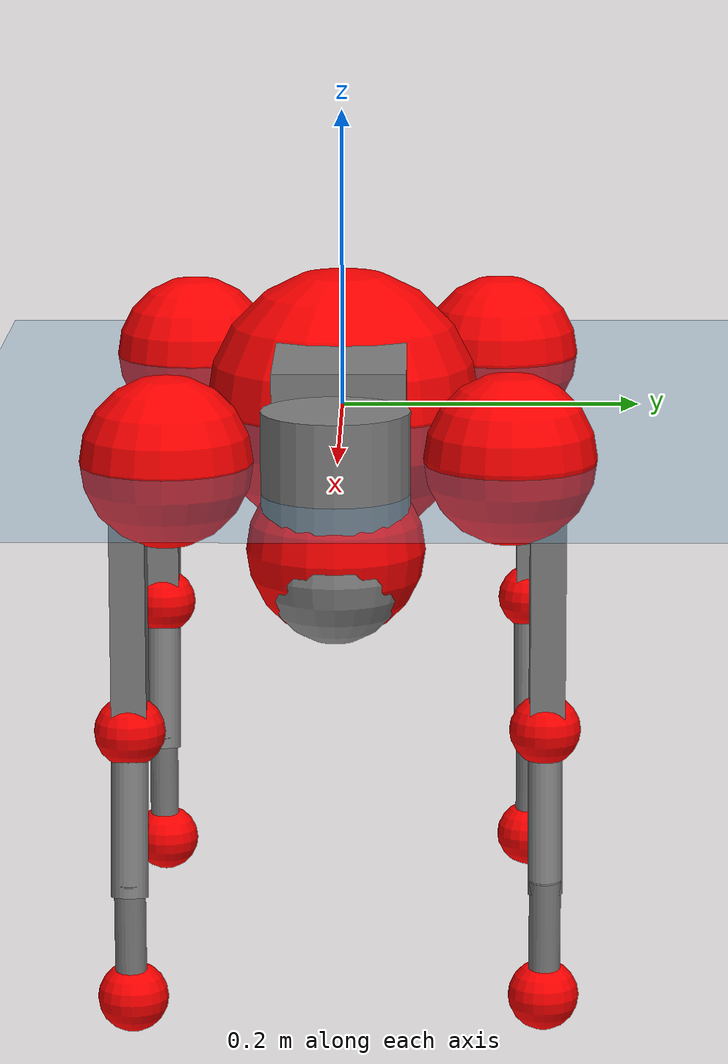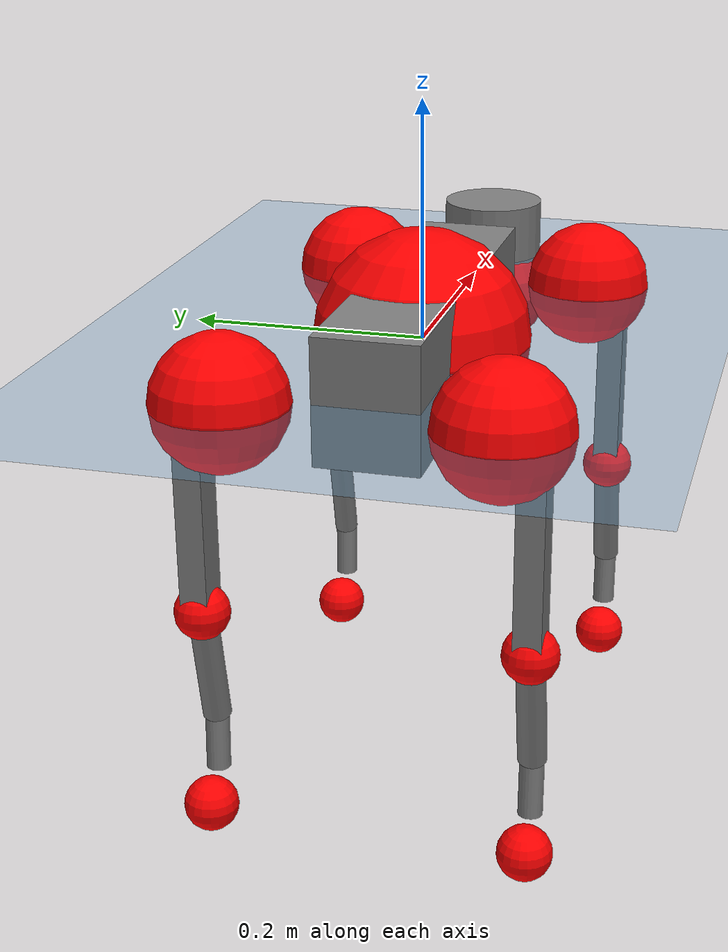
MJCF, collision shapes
<mujoco model="go2">
  <compiler angle="radian" assetdir="assets" balanceinertia="true" inertiafromgeom="false"/>

  <option timestep="0.005" density="1.2" viscosity="2e-05"/>

  <size nkey="1"/>

  <visual>
    <quality shadowsize="8192"/>
    <map shadowclip="0.5"/>
  </visual>

  <default>
    <default class="/">
      <geom contype="0" conaffinity="0" group="1" solref="-1000 -80"/>
      <site size="0.01 0.005 0.005" group="5"/>
      <general forcelimited="true" biastype="affine" gainprm="20" biasprm="0 -20 -0.5"/>
      <default class="go2">
        <joint armature="0.01" damping="0.01" frictionloss="0.2"/>
        <geom condim="1" margin="0.001"/>
        <default class="visual">
          <geom type="mesh" group="2"/>
        </default>
        <default class="collision">
          <geom group="3"/>
          <default class="foot">
            <geom size="0.022 0 0" condim="6" priority="1" friction="0.8 0.02 0.01" solimp="0.015 1 0.022"/>
          </default>
        </default>
        <default class="reward_collision_sphere">
          <geom group="5" rgba="1 0 0 1"/>
        </default>
      </default>
    </default>
  </default>

  <asset>
    <texture type="skybox" colorspace="auto" name="//unnamed_texture_0" builtin="gradient" rgb1="0.95 0.95 0.95" rgb2="0.95 0.95 0.95" width="100" height="600"/>
    <texture type="2d" colorspace="auto" name="texplane" builtin="checker" rgb1="0.345 0.575 0.748" rgb2="0.345 0.575 0.748" markrgb="1 1 1" width="512" height="512"/>
    <material name="MatPlane" class="/" texture="texplane" texuniform="true" texrepeat="2 2" specular="0.9"/>
    <material name="metal" class="/" rgba="0.9 0.95 0.95 1"/>
    <material name="black" class="/" rgba="0 0 0 1"/>
    <material name="white" class="/"/>
    <material name="gray" class="/" rgba="0.671705 0.692426 0.77427 1"/>
    <mesh name="base_0" class="/" file="base_0.obj"/>
    <mesh name="base_1" class="/" file="base_1.obj"/>
    <mesh name="base_2" class="/" file="base_2.obj"/>
    <mesh name="base_3" class="/" file="base_3.obj"/>
    <mesh name="base_4" class="/" file="base_4.obj"/>
    <mesh name="hip_0" class="/" file="hip_0.obj"/>
    <mesh name="hip_1" class="/" file="hip_1.obj"/>
    <mesh name="thigh_0" class="/" file="thigh_0.obj"/>
    <mesh name="thigh_1" class="/" file="thigh_1.obj"/>
    <mesh name="thigh_mirror_0" class="/" file="thigh_mirror_0.obj"/>
    <mesh name="thigh_mirror_1" class="/" file="thigh_mirror_1.obj"/>
    <mesh name="calf_0" class="/" file="calf_0.obj"/>
    <mesh name="calf_1" class="/" file="calf_1.obj"/>
    <mesh name="calf_mirror_0" class="/" file="calf_mirror_0.obj"/>
    <mesh name="calf_mirror_1" class="/" file="calf_mirror_1.obj"/>
    <mesh name="foot" class="/" file="foot.obj"/>
  </asset>

  <worldbody>
    <geom name="floor" class="/" size="100 100 0.125" type="plane" group="0" material="MatPlane"/>
    <light name="toplight_shadow" class="/" pos="0 0 5" dir="0.0990148 0.0990148 -0.990148" type="directional" ambient="0.04 0.04 0.04" diffuse="0.55 0.55 0.55" specular="0.12 0.12 0.12"/>
    <light name="toplight_fill" class="/" pos="0 0 5" dir="0.0990148 0.0990148 -0.990148" type="directional" castshadow="false" ambient="0.04 0.04 0.04" diffuse="0.3 0.3 0.3" specular="0.08 0.08 0.08"/>
    <body name="trunk" childclass="go2" pos="0.000729882 0.000304797 0.000666907" quat="1 9.15183e-06 9.51139e-05 -3.76757e-05">
      <inertial pos="0.0201921 -0.000867086 -0.00462194" quat="-0.00132653 0.712099 -0.00097373 0.702078" mass="5.38299" diaginertia="0.0989373 0.0731578 0.0104106"/>
      <joint name="//unnamed_joint_0" type="free" armature="0" damping="0" frictionloss="0"/>
      <geom name="//unnamed_geom_1" class="visual" material="black" mesh="base_0"/>
      <geom name="//unnamed_geom_2" class="visual" material="black" mesh="base_1"/>
      <geom name="//unnamed_geom_3" class="visual" material="black" mesh="base_2"/>
      <geom name="//unnamed_geom_4" class="visual" material="white" mesh="base_3"/>
      <geom name="//unnamed_geom_5" class="visual" material="gray" mesh="base_4"/>
      <geom name="trunk_1" class="collision" size="0.173812 0.0431989 0.0526704" type="box"/>
      <geom name="trunk_2" class="collision" size="0.0462021 0.0415819" pos="0.280707 0 0.00843586" type="cylinder"/>
      <geom name="trunk_3" class="collision" size="0.04343" pos="0.288587 0 -0.0506152"/>
      <geom name="//unnamed_geom_9" class="reward_collision_sphere" size="0.0924042"/>
      <geom name="//unnamed_geom_10" class="reward_collision_sphere" size="0.0554425" pos="0.275783 0 -0.0379614"/>
      <site name="imu" pos="-0.0238216 -0.00420304 0.0359254" size="0.00924042"/>
      <camera name="track" pos="0 -1.8872 0" quat="0.707107 0.707107 0 0" mode="trackcom"/>
      <camera name="ego_camera" pos="0.307301 0 0.0379614" quat="-0.5 -0.5 0.5 0.5"/>
      <body name="FL_hip" pos="0.189808 0.0433938 0.00123085" quat="1 0.000172155 -8.65013e-05 0.000213018">
        <inertial pos="-0.00475984 0.00277378 -0.000579674" quat="0.497696 0.498899 0.505307 0.498059" mass="0.542658" diaginertia="0.000832291 0.000444123 0.000205059"/>
        <joint name="FL_hip_joint" pos="0 0 0" axis="0.999951 -0.00921489 -0.00360612" stiffness="0.00517639" range="-1.0375 1.04983" armature="0.00918626" damping="0.000379047" frictionloss="0.184836"/>
        <geom name="//unnamed_geom_11" class="visual" material="metal" mesh="hip_0"/>
        <geom name="//unnamed_geom_12" class="visual" material="gray" mesh="hip_1"/>
        <geom name="//unnamed_geom_13" class="collision" size="0.0425059 0.0184808" pos="0 0.0754881 0" quat="0.707107 0.707107 0 0" type="cylinder"/>
        <geom name="//unnamed_geom_14" class="reward_collision_sphere" size="0.0554425" pos="0 0.0660521 0"/>
        <body name="FL_thigh" pos="-0.00108369 0.0903659 0.00151268" quat="1 -3.74943e-05 -3.099e-05 0.000184262">
          <inertial pos="-0.00462549 -0.0200223 -0.0275661" quat="0.829537 0.0847515 -0.0200487 0.551618" mass="0.920434" diaginertia="0.00551374 0.00439242 0.000382941"/>
          <joint name="FL_thigh_joint" pos="0 0 0" axis="-0.00404993 0.999992 0.000402301" range="-1.58315 3.49385" armature="0.00930943" damping="0.00654661" frictionloss="0.185661"/>
          <geom name="//unnamed_geom_15" class="visual" material="metal" mesh="thigh_0"/>
          <geom name="//unnamed_geom_16" class="visual" material="gray" mesh="thigh_1"/>
          <geom name="//unnamed_geom_17" class="collision" size="0.0984104 0.0113195 0.0157087" pos="0 0 -0.089842" quat="0.707107 0 0.707107 0" type="box"/>
          <body name="FL_calf" pos="-0.000439658 -0.00110064 -0.180051" quat="1 0.000116561 -0.000393977 0.000169897">
            <inertial pos="0.00667412 -0.000324168 -0.119552" quat="0.710617 0.000425821 -0.00346592 0.703571" mass="0.19059" diaginertia="0.00141131 0.00109448 2.30025e-05"/>
            <joint name="FL_calf_joint" pos="0 0 0" axis="0.00234437 0.999996 -0.00136908" range="-2.72868 -0.842535" armature="0.00891348" damping="0.00375008" frictionloss="0.17743"/>
            <geom name="//unnamed_geom_18" class="visual" material="gray" mesh="calf_0"/>
            <geom name="//unnamed_geom_19" class="visual" material="black" mesh="calf_1"/>
            <geom name="FL_calf0" class="collision" size="0.0110885 0.0554425" pos="0.0078795 0 -0.0506152" quat="0.994493 0 -0.104807 0" type="cylinder"/>
            <geom name="//unnamed_geom_21" class="collision" size="0.0101645 0.0300314" pos="0.0196988 0 -0.124851" quat="0.999688 0 0.0249974 0" type="cylinder"/>
            <geom name="//unnamed_geom_22" class="visual" pos="0 0 -0.179684" quat="1 0 0 0" material="black" mesh="foot"/>
            <geom name="FL_foot" class="foot" size="0.0167093" pos="-0.00196988 0 -0.179684"/>
            <geom name="//unnamed_geom_24" class="reward_collision_sphere" size="0.023101"/>
            <geom name="//unnamed_geom_25" class="reward_collision_sphere" size="0.023101" pos="-0.00196988 0 -0.179684"/>
            <site name="FL_foot" class="foot" pos="-0.00196988 0 -0.179684" size="0.00924042"/>
          </body>
        </body>
      </body>
      <body name="FR_hip" pos="0.191505 -0.043138 -0.000411526" quat="1 -0.000152725 -0.000121727 -0.000245852">
        <inertial pos="-0.00599806 -0.00159375 -0.000332955" quat="0.496816 0.506302 0.499288 0.497537" mass="0.536845" diaginertia="0.000835114 0.000450842 0.000209503"/>
        <joint name="FR_hip_joint" pos="0 0 0" axis="0.999998 0.00179953 -0.000530051" stiffness="0.00399776" range="-1.05143 1.04862" armature="0.00934495" damping="0.013186" frictionloss="0.187477"/>
        <geom name="//unnamed_geom_26" class="visual" pos="0 8.71284e-10 3.73712e-08" quat="4.63268e-05 1 0 0" material="metal" mesh="hip_0"/>
        <geom name="//unnamed_geom_27" class="visual" pos="0 1.41246e-09 -9.24332e-08" quat="4.63268e-05 1 0 0" material="gray" mesh="hip_1"/>
        <geom name="//unnamed_geom_28" class="collision" size="0.0425059 0.0184808" pos="0 -0.0754881 0" quat="0.707107 0.707107 0 0" type="cylinder"/>
        <geom name="//unnamed_geom_29" class="reward_collision_sphere" size="0.0554425" pos="0 -0.0660521 0"/>
        <body name="FR_thigh" pos="0.000410041 -0.0911346 0.00137475" quat="1 -2.95875e-05 1.79621e-06 0.000156382">
          <inertial pos="-0.00453404 0.021739 -0.0272308" quat="0.552701 -0.0177609 0.0813061 0.829214" mass="0.906846" diaginertia="0.00557926 0.00440458 0.000377057"/>
          <joint name="FR_thigh_joint" pos="0 0 0" axis="-0.00299691 -0.999994 -0.00155526" stiffness="0.00281491" range="-3.49528 1.56026" armature="0.00927296" damping="0.0109239" frictionloss="0.179708"/>
          <geom name="//unnamed_geom_30" class="visual" material="metal" mesh="thigh_mirror_0"/>
          <geom name="//unnamed_geom_31" class="visual" material="gray" mesh="thigh_mirror_1"/>
          <geom name="//unnamed_geom_32" class="collision" size="0.0984104 0.0113195 0.0157087" pos="0 0 -0.089842" quat="0.707107 0 0.707107 0" type="box"/>
          <body name="FR_calf" pos="8.20619e-07 -0.000260814 -0.178726" quat="1 -5.97818e-06 -2.14652e-05 -2.99023e-05">
            <inertial pos="0.00633419 0.000437155 -0.119296" quat="0.703543 -0.00443571 0.00161415 0.710637" mass="0.190792" diaginertia="0.00138073 0.0010952 2.29065e-05"/>
            <joint name="FR_calf_joint" pos="0 0 0" axis="0.00039114 -0.999998 -0.00181879" range="0.831101 2.70729" armature="0.00927532" damping="0.00559894" frictionloss="0.188455"/>
            <geom name="//unnamed_geom_33" class="visual" material="gray" mesh="calf_mirror_0"/>
            <geom name="//unnamed_geom_34" class="visual" material="black" mesh="calf_mirror_1"/>
            <geom name="FR_calf0" class="collision" size="0.0120125 0.0554425" pos="0.00984938 0 -0.0506152" quat="0.995004 0 -0.0998334 0" type="cylinder"/>
            <geom name="//unnamed_geom_36" class="collision" size="0.0101645 0.0300314" pos="0.0196988 0 -0.124851" quat="0.999688 0 0.0249974 0" type="cylinder"/>
            <geom name="//unnamed_geom_37" class="visual" pos="0 0 -0.179684" quat="1 0 0 0" material="black" mesh="foot"/>
            <geom name="FR_foot" class="foot" size="0.0225208" pos="-0.00196988 0 -0.179684"/>
            <geom name="//unnamed_geom_39" class="reward_collision_sphere" size="0.023101"/>
            <geom name="//unnamed_geom_40" class="reward_collision_sphere" size="0.023101" pos="-0.00196988 0 -0.179684"/>
            <site name="FR_foot" class="foot" pos="-0.00196988 0 -0.179684" size="0.00924042"/>
          </body>
        </body>
      </body>
      <body name="RL_hip" pos="-0.190259 0.0436596 0.000258619" quat="1 7.33279e-05 -9.029e-05 4.7406e-06">
        <inertial pos="0.00518007 0.00262689 0.000712886" quat="0.503081 0.498956 0.50017 0.497778" mass="0.540239" diaginertia="0.000821976 0.000447976 0.000206514"/>
        <joint name="RL_hip_joint" pos="0 0 0" axis="-0.999808 -0.0164185 0.0107343" range="-1.04879 1.0642" armature="0.00941964" damping="0.0162708" frictionloss="0.184341"/>
        <geom name="//unnamed_geom_41" class="visual" pos="-1.23139e-09 0 -2.41382e-07" quat="4.63268e-05 0 1 0" material="metal" mesh="hip_0"/>
        <geom name="//unnamed_geom_42" class="visual" pos="-1.99624e-09 0 -2.14071e-07" quat="4.63268e-05 0 1 0" material="gray" mesh="hip_1"/>
        <geom name="//unnamed_geom_43" class="collision" size="0.0425059 0.0184808" pos="0 0.0754881 0" quat="0.707107 0.707107 0 0" type="cylinder"/>
        <geom name="//unnamed_geom_44" class="reward_collision_sphere" size="0.0554425" pos="0 0.0660521 0"/>
        <body name="RL_thigh" pos="-0.000282928 0.0900716 -0.00042932" quat="1 1.11918e-05 4.4826e-06 3.52576e-05">
          <inertial pos="-0.00355454 -0.0206422 -0.0272362" quat="0.829599 0.0851605 -0.0197058 0.551476" mass="0.917613" diaginertia="0.00552726 0.00440896 0.000373016"/>
          <joint name="RL_thigh_joint" pos="0 0 0" axis="-0.0014379 0.999996 0.00237565" range="-0.526876 4.5386" armature="0.00891797" damping="0.0123253" frictionloss="0.185482"/>
          <geom name="//unnamed_geom_45" class="visual" material="metal" mesh="thigh_0"/>
          <geom name="//unnamed_geom_46" class="visual" material="gray" mesh="thigh_1"/>
          <geom name="//unnamed_geom_47" class="collision" size="0.0984104 0.0113195 0.0157087" pos="0 0 -0.089842" quat="0.707107 0 0.707107 0" type="box"/>
          <body name="RL_calf" pos="0.00024523 -0.000994158 -0.180226" quat="1 -0.000191855 -0.000256432 0.000117408">
            <inertial pos="0.00625049 0.000164058 -0.119408" quat="0.71086 -0.0010337 -0.00138048 0.703331" mass="0.1905" diaginertia="0.00139599 0.00109128 2.2527e-05"/>
            <joint name="RL_calf_joint" pos="0 0 0" axis="-0.00600436 0.999947 0.00839183" range="-2.7211 -0.848162" armature="0.00886382" damping="0.00697645" frictionloss="0.189431"/>
            <geom name="//unnamed_geom_48" class="visual" material="gray" mesh="calf_0"/>
            <geom name="//unnamed_geom_49" class="visual" material="black" mesh="calf_1"/>
            <geom name="RL_calf0" class="collision" size="0.0120125 0.0554425" pos="0.00984938 0 -0.0506152" quat="0.995004 0 -0.0998334 0" type="cylinder"/>
            <geom name="//unnamed_geom_51" class="collision" size="0.0101645 0.0300314" pos="0.0196988 0 -0.124851" quat="0.999688 0 0.0249974 0" type="cylinder"/>
            <geom name="//unnamed_geom_52" class="visual" pos="0 0 -0.179684" quat="1 0 0 0" material="black" mesh="foot"/>
            <geom name="RL_foot" class="foot" size="0.0175657" pos="-0.00196988 0 -0.179684"/>
            <geom name="//unnamed_geom_54" class="reward_collision_sphere" size="0.023101"/>
            <geom name="//unnamed_geom_55" class="reward_collision_sphere" size="0.023101" pos="-0.00196988 0 -0.179684"/>
            <site name="RL_foot" class="foot" pos="-0.00196988 0 -0.179684" size="0.00924042"/>
          </body>
        </body>
      </body>
      <body name="RR_hip" pos="-0.190595 -0.0435016 -0.000490273" quat="1 0.000328707 -3.42602e-05 0.000221943">
        <inertial pos="0.0055899 -0.00256573 -0.000265149" quat="0.500429 0.495228 0.496162 0.508077" mass="0.534341" diaginertia="0.000817109 0.000445871 0.00020562"/>
        <joint name="RR_hip_joint" pos="0 0 0" axis="-0.999992 -0.00310136 0.00265005" range="-1.05214 1.05263" armature="0.00956125" damping="0.00628455" frictionloss="0.188819"/>
        <geom name="//unnamed_geom_56" class="visual" pos="1.22996e-09 8.71284e-10 -2.78753e-07" quat="2.14617e-09 4.63268e-05 4.63268e-05 -1" material="metal" mesh="hip_0"/>
        <geom name="//unnamed_geom_57" class="visual" pos="1.99978e-09 1.41246e-09 -1.21638e-07" quat="2.14617e-09 4.63268e-05 4.63268e-05 -1" material="gray" mesh="hip_1"/>
        <geom name="//unnamed_geom_58" class="collision" size="0.0425059 0.0184808" pos="0 -0.0754881 0" quat="0.707107 0.707107 0 0" type="cylinder"/>
        <geom name="//unnamed_geom_59" class="reward_collision_sphere" size="0.0554425" pos="0 -0.0660521 0"/>
        <body name="RR_thigh" pos="-7.64036e-05 -0.090573 -0.00241764" quat="1 -5.41904e-05 -5.86603e-05 2.7289e-05">
          <inertial pos="-0.0037447 0.02106 -0.0277037" quat="0.552028 -0.0194613 0.0848099 0.829273" mass="0.911111" diaginertia="0.00548633 0.00431994 0.0003746"/>
          <joint name="RR_thigh_joint" pos="0 0 0" axis="-0.000757602 -0.999992 -0.00382373" range="-4.53602 0.521208" armature="0.00931202" damping="0.0143924" frictionloss="0.188976"/>
          <geom name="//unnamed_geom_60" class="visual" material="metal" mesh="thigh_mirror_0"/>
          <geom name="//unnamed_geom_61" class="visual" material="gray" mesh="thigh_mirror_1"/>
          <geom name="//unnamed_geom_62" class="collision" size="0.0984104 0.0113195 0.0157087" pos="0 0 -0.089842" quat="0.707107 0 0.707107 0" type="box"/>
          <body name="RR_calf" pos="0.00108893 -0.000315957 -0.180825" quat="1 -0.000199958 -3.61643e-05 9.11268e-05">
            <inertial pos="0.00672342 0.000795881 -0.11957" quat="0.701822 -0.00417804 0.00497911 0.712323" mass="0.191106" diaginertia="0.00137692 0.00109621 2.25784e-05"/>
            <joint name="RR_calf_joint" pos="0 0 0" axis="0.0017331 -0.999992 0.00351292" range="0.830543 2.72566" armature="0.00906654" damping="0.00944754" frictionloss="0.181684"/>
            <geom name="//unnamed_geom_63" class="visual" material="gray" mesh="calf_mirror_0"/>
            <geom name="//unnamed_geom_64" class="visual" material="black" mesh="calf_mirror_1"/>
            <geom name="RR_calf0" class="collision" size="0.0120125 0.0554425" pos="0.00984938 0 -0.0506152" quat="0.995004 0 -0.0998334 0" type="cylinder"/>
            <geom name="//unnamed_geom_66" class="collision" size="0.0101645 0.0300314" pos="0.0196988 0 -0.124851" quat="0.999688 0 0.0249974 0" type="cylinder"/>
            <geom name="//unnamed_geom_67" class="visual" pos="0 0 -0.179684" quat="1 0 0 0" material="black" mesh="foot"/>
            <geom name="RR_foot" class="foot" size="0.0216605" pos="-0.00196988 0 -0.179684"/>
            <geom name="//unnamed_geom_69" class="reward_collision_sphere" size="0.023101"/>
            <geom name="//unnamed_geom_70" class="reward_collision_sphere" size="0.023101" pos="-0.00196988 0 -0.179684"/>
            <site name="RR_foot" class="foot" pos="-0.00196988 0 -0.179684" size="0.00924042"/>
          </body>
        </body>
      </body>
    </body>
  </worldbody>

  <contact>
    <pair class="/" geom1="floor" geom2="FL_foot" name="//unnamed_contact_0"/>
    <pair class="/" geom1="floor" geom2="FR_foot" name="//unnamed_contact_1"/>
    <pair class="/" geom1="floor" geom2="RL_foot" name="//unnamed_contact_2"/>
    <pair class="/" geom1="floor" geom2="RR_foot" name="//unnamed_contact_3"/>
  </contact>

  <actuator>
    <general name="FL_hip" class="/" joint="FL_hip_joint" forcerange="-21.8307 21.8307" gainprm="18.1548" biasprm="0 -18.1548 -0.47012"/>
    <general name="FL_thigh" class="/" joint="FL_thigh_joint" forcerange="-22.5851 22.5851" gainprm="18.1548" biasprm="0 -18.1548 -0.47012"/>
    <general name="FL_calf" class="/" joint="FL_calf_joint" forcerange="-41.484 41.484" gainprm="18.1548" biasprm="0 -18.1548 -0.47012"/>
    <general name="FR_hip" class="/" joint="FR_hip_joint" forcerange="-21.8448 21.8448" gainprm="18.1548" biasprm="0 -18.1548 -0.47012"/>
    <general name="FR_thigh" class="/" joint="FR_thigh_joint" forcerange="-21.1789 21.1789" gainprm="18.1548" biasprm="0 -18.1548 -0.47012"/>
    <general name="FR_calf" class="/" joint="FR_calf_joint" forcerange="-41.4026 41.4026" gainprm="18.1548" biasprm="0 -18.1548 -0.47012"/>
    <general name="RL_hip" class="/" joint="RL_hip_joint" forcerange="-22.3071 22.3071" gainprm="18.1548" biasprm="0 -18.1548 -0.47012"/>
    <general name="RL_thigh" class="/" joint="RL_thigh_joint" forcerange="-22.4543 22.4543" gainprm="18.1548" biasprm="0 -18.1548 -0.47012"/>
    <general name="RL_calf" class="/" joint="RL_calf_joint" forcerange="-41.5605 41.5605" gainprm="18.1548" biasprm="0 -18.1548 -0.47012"/>
    <general name="RR_hip" class="/" joint="RR_hip_joint" forcerange="-22.5729 22.5729" gainprm="18.1548" biasprm="0 -18.1548 -0.47012"/>
    <general name="RR_thigh" class="/" joint="RR_thigh_joint" forcerange="-22.0708 22.0708" gainprm="18.1548" biasprm="0 -18.1548 -0.47012"/>
    <general name="RR_calf" class="/" joint="RR_calf_joint" forcerange="-42.9977 42.9977" gainprm="18.1548" biasprm="0 -18.1548 -0.47012"/>
  </actuator>

  <sensor>
    <gyro site="imu" name="imu_angular_velocity"/>
    <velocimeter site="imu" name="imu_linear_velocity"/>
    <framelinvel objtype="site" objname="FL_foot" name="FL_foot_global_linear_velocity"/>
    <framelinvel objtype="site" objname="FR_foot" name="FR_foot_global_linear_velocity"/>
    <framelinvel objtype="site" objname="RL_foot" name="RL_foot_global_linear_velocity"/>
    <framelinvel objtype="site" objname="RR_foot" name="RR_foot_global_linear_velocity"/>
  </sensor>

  <keyframe>
    <key name="home" qpos="0 0 0.325 1 0 0 0 0.1 0.8 -1.5 -0.1 -0.8 1.5 -0.1 0.8 -1.5 0.1 -0.8 1.5"/>
  </keyframe>
</mujoco>
